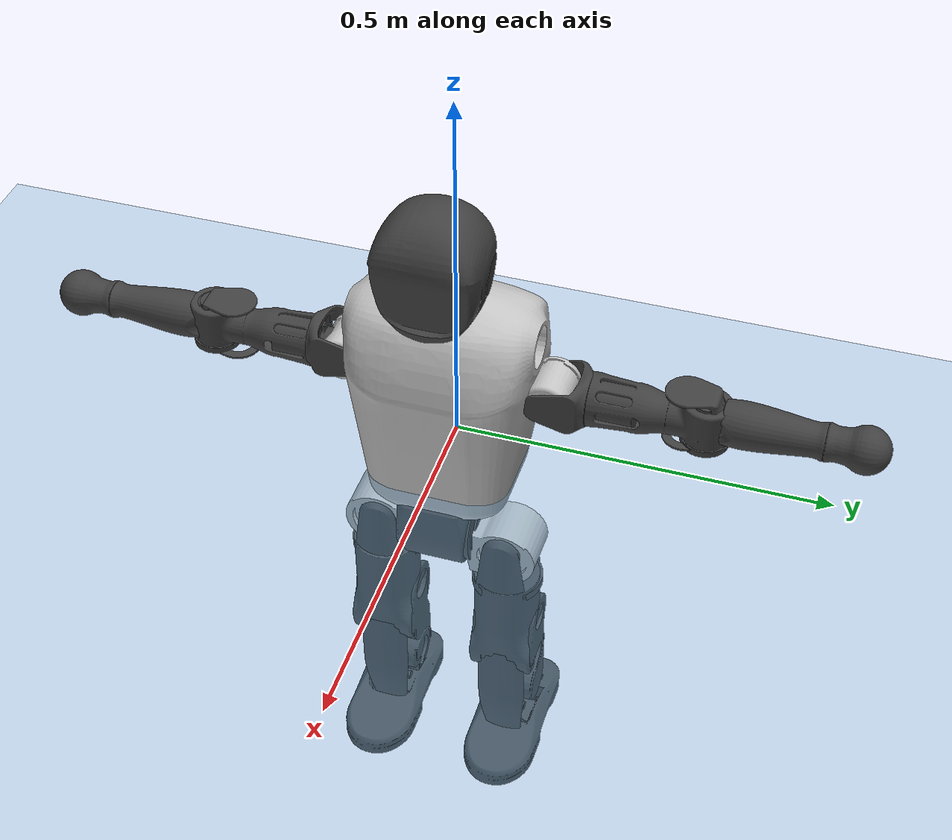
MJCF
<mujoco model="T1">
  <compiler angle="radian" assetdir="assets" balanceinertia="true" inertiafromgeom="false"/>

  <option timestep="0.005" density="1.2" viscosity="2e-05"/>

  <size nkey="1"/>

  <visual>
    <quality shadowsize="8192"/>
    <map shadowclip="0.5"/>
  </visual>

  <default>
    <default class="/">
      <joint armature="0.01" damping="0.01" frictionloss="0.1"/>
      <geom contype="0" conaffinity="0" group="1" solref="-1000 -80"/>
      <site size="0.01 0.005 0.005" group="5"/>
      <general forcelimited="true" biastype="affine" gainprm="25" biasprm="0 -25 -0.6"/>
      <default class="t1">
        <geom rgba="0.25 0.25 0.25 1"/>
        <default class="visual">
          <geom type="mesh" group="2"/>
        </default>
        <default class="collision">
          <geom group="3"/>
        </default>
        <default class="foot">
          <geom size="0.1115 0.05 0.015" type="box" condim="6" group="4" priority="1" solimp="0.015 1 0.015"/>
        </default>
        <default class="reward_collision_sphere">
          <geom group="5" rgba="1 0 0 1"/>
        </default>
      </default>
    </default>
  </default>

  <asset>
    <texture type="skybox" colorspace="auto" name="//unnamed_texture_0" builtin="gradient" rgb1="0.95 0.95 0.95" rgb2="0.95 0.95 0.95" width="100" height="600"/>
    <texture type="2d" colorspace="auto" name="texplane" builtin="checker" rgb1="0.345 0.575 0.748" rgb2="0.345 0.575 0.748" markrgb="1 1 1" width="512" height="512"/>
    <material name="MatPlane" class="/" texture="texplane" texuniform="true" texrepeat="2 2" specular="0.9"/>
    <mesh name="Trunk" class="/" file="Trunk.stl"/>
    <mesh name="H1" class="/" file="H1.stl"/>
    <mesh name="H2" class="/" file="H2.stl"/>
    <mesh name="AL1" class="/" file="AL1.stl"/>
    <mesh name="AL2" class="/" file="AL2.stl"/>
    <mesh name="AL3" class="/" file="AL3.stl"/>
    <mesh name="left_hand_link" class="/" file="left_hand_link.stl"/>
    <mesh name="AR1" class="/" file="AR1.stl"/>
    <mesh name="AR2" class="/" file="AR2.stl"/>
    <mesh name="AR3" class="/" file="AR3.stl"/>
    <mesh name="right_hand_link" class="/" file="right_hand_link.stl"/>
    <mesh name="Waist" class="/" file="Waist.stl"/>
    <mesh name="Hip_Pitch_Left" class="/" file="Hip_Pitch_Left.stl"/>
    <mesh name="Hip_Roll_Left" class="/" file="Hip_Roll_Left.stl"/>
    <mesh name="Hip_Yaw_Left" class="/" file="Hip_Yaw_Left.stl"/>
    <mesh name="Shank_Left" class="/" file="Shank_Left.stl"/>
    <mesh name="Ankle_Cross_Left" class="/" file="Ankle_Cross_Left.stl"/>
    <mesh name="left_foot_link" class="/" file="left_foot_link.stl"/>
    <mesh name="Hip_Pitch_Right" class="/" file="Hip_Pitch_Right.stl"/>
    <mesh name="Hip_Roll_Right" class="/" file="Hip_Roll_Right.stl"/>
    <mesh name="Hip_Yaw_Right" class="/" file="Hip_Yaw_Right.stl"/>
    <mesh name="Shank_Right" class="/" file="Shank_Right.stl"/>
    <mesh name="Ankle_Cross_Right" class="/" file="Ankle_Cross_Right.stl"/>
    <mesh name="right_foot_link" class="/" file="right_foot_link.stl"/>
  </asset>

  <worldbody>
    <geom name="floor" class="/" size="100 100 0.125" type="plane" group="0" material="MatPlane"/>
    <light name="toplight_shadow" class="/" pos="0 0 5" dir="0.0990148 0.0990148 -0.990148" type="directional" ambient="0.04 0.04 0.04" diffuse="0.55 0.55 0.55" specular="0.12 0.12 0.12"/>
    <light name="toplight_fill" class="/" pos="0 0 5" dir="0.0990148 0.0990148 -0.990148" type="directional" castshadow="false" ambient="0.04 0.04 0.04" diffuse="0.3 0.3 0.3" specular="0.08 0.08 0.08"/>
    <body name="trunk" childclass="t1" pos="-0.000108313 0.00519198 -0.00359462" quat="0.999996 0.00152834 0.000402669 -0.00231493">
      <inertial pos="0.0565712 0.000500413 0.0756321" quat="0.999957 0.000368277 -0.00930791 -0.000178678" mass="7.52389" diaginertia="0.109108 0.0279052 0.0087323"/>
      <joint name="//unnamed_joint_0" type="free" armature="0" damping="0" frictionloss="0"/>
      <geom name="//unnamed_geom_1" class="visual" rgba="0.76 0.76 0.76 1" mesh="Trunk"/>
      <geom name="//unnamed_geom_2" class="collision" size="0.0649752 0.0866336 0.12995" pos="0.0633927 0 0.0859601" type="box"/>
      <geom name="//unnamed_geom_3" class="reward_collision_sphere" size="0.0996287" pos="0.0633927 0 0.0716334"/>
      <geom name="//unnamed_geom_4" class="reward_collision_sphere" size="0.012995" pos="0.0633927 0.070221 0"/>
      <geom name="//unnamed_geom_5" class="reward_collision_sphere" size="0.012995" pos="0.0633927 -0.070221 0"/>
      <geom name="//unnamed_geom_6" class="reward_collision_sphere" size="0.012995" pos="0.0633927 0.0883959 0.12894"/>
      <geom name="//unnamed_geom_7" class="reward_collision_sphere" size="0.012995" pos="0.0633927 -0.0883959 0.12894"/>
      <site name="imu" pos="-0.0179789 -0.00621931 0.00696469" size="0.00866336"/>
      <camera name="track" pos="0 -1.65226 0" quat="0.707107 0.707107 0 0" mode="trackcom"/>
      <camera name="ego_camera" pos="0.128899 0 0.30086" quat="-0.5 -0.5 0.5 0.5"/>
      <body name="H1" pos="0.0603277 -0.00572439 0.177342" quat="1 -0.000179298 -0.000212192 5.41587e-05">
        <inertial pos="0.00346613 -0.00154755 0.0374369" quat="0.78781 -0.000649818 -0.00742411 0.615873" mass="0.286353" diaginertia="0.000332929 8.45602e-05 2.85348e-05"/>
        <joint name="AAHead_yaw" pos="0 0 0" axis="0.0036078 0.00814212 0.99996" range="-1.56293 1.6536" armature="0.0106336" damping="0" frictionloss="0.0511222"/>
        <geom name="//unnamed_geom_8" class="visual" mesh="H1"/>
        <body name="H2" pos="-0.00338616 -0.000117631 0.0418312" quat="1 -2.55806e-06 -0.000115192 -3.59598e-05">
          <inertial pos="0.00887401 -0.00148733 0.0717628" quat="0.988379 0.106596 -0.0748485 -0.078367" mass="0.424202" diaginertia="0.00288199 0.000787806 0.000318038"/>
          <joint name="Head_pitch" pos="0 0 0" axis="-0.00235545 -0.999936 -0.0111035" range="-1.2686 0.395448" armature="0.0117651" damping="0" frictionloss="0.0807192"/>
          <geom name="//unnamed_geom_9" class="visual" mesh="H2"/>
          <geom name="//unnamed_geom_10" class="collision" size="0.0693069" pos="0.0105655 0 0.0787968"/>
          <geom name="//unnamed_geom_11" class="reward_collision_sphere" size="0.0779703" pos="0.0211309 0 0.0716334"/>
        </body>
      </body>
      <body name="AL1" pos="0.0613747 0.091203 0.155319" quat="1 -2.80519e-05 0.000356161 8.4556e-05">
        <inertial pos="0.000396012 0.0375602 0.000477131" quat="0.489997 0.49185 -0.535765 0.480565" mass="0.329924" diaginertia="0.0017899 0.0004823 5.08575e-05"/>
        <joint name="Left_Shoulder_Pitch" pos="0 0 0" axis="-0.00608581 0.999966 0.00561168" range="-3.28831 1.21739" armature="0.00811046" damping="0.00381426" frictionloss="0.0771327"/>
        <geom name="//unnamed_geom_12" class="visual" rgba="0.76 0.76 0.76 1" mesh="AL1"/>
        <body name="AL2" pos="0.00299516 0.0408117 0.000766173" quat="1 0.000311623 -0.000163812 -0.00021958">
          <inertial pos="0.00651279 0.0328937 -0.00129296" quat="0.490694 0.508957 -0.488239 0.511669" mass="0.104563" diaginertia="0.000518117 0.000133928 3.19284e-05"/>
          <joint name="Left_Shoulder_Roll" pos="0 0 0" axis="-0.999951 0.0076567 -0.00627462" range="-1.56763 1.6991" armature="0.00847167" damping="0" frictionloss="0.0769762"/>
          <geom name="//unnamed_geom_13" class="visual" mesh="AL2"/>
          <body name="AL3" pos="-0.0045495 0.0523839 -0.00125812" quat="0.999998 0.00152888 -6.45403e-05 -0.00110287">
            <inertial pos="0.00681243 0.0726299 0.000437842" quat="0.704597 0.709532 -0.00525376 0.00887027" mass="0.641113" diaginertia="0.0168668 0.00535153 0.000121226"/>
            <joint name="Left_Elbow_Pitch" pos="0 0 0" axis="0.00376981 -0.999959 0.00822826" range="-2.28679 2.28041" armature="0.00953972" damping="0" frictionloss="0.0778334"/>
            <geom name="//unnamed_geom_14" class="visual" mesh="AL3"/>
            <geom name="//unnamed_geom_15" class="collision" size="0.0259901 0.0649752" pos="0 0.0413065 0" quat="0.707105 0.707108 0 0" type="cylinder"/>
            <geom name="//unnamed_geom_16" class="reward_collision_sphere" size="0.0311881"/>
            <body name="left_hand_link" pos="0.00141611 0.122343 0.00800798" quat="0.999996 -0.00040045 -0.00290788 0.000338356">
              <inertial pos="-0.00111369 0.0933581 -0.00241805" quat="0.710226 0.703943 -0.00314904 -0.00573277" mass="0.224685" diaginertia="0.0109035 0.00327629 4.6627e-05"/>
              <joint name="Left_Elbow_Yaw" pos="0 0 0" axis="0.0065124 -0.0104442 0.999924" range="-2.48741 -0.00483484" armature="0.00767492" damping="0.0191543" frictionloss="0.083936"/>
              <geom name="//unnamed_geom_17" class="visual" mesh="left_hand_link"/>
              <geom name="//unnamed_geom_18" class="collision" size="0.0259901 0.0758044" pos="0 0.107397 0" quat="0.707105 0.707108 0 0" type="cylinder"/>
              <geom name="//unnamed_geom_19" class="reward_collision_sphere" size="0.0433168"/>
              <geom name="//unnamed_geom_20" class="reward_collision_sphere" size="0.0303218" pos="0 0.0908743 0"/>
              <geom name="//unnamed_geom_21" class="reward_collision_sphere" size="0.0303218" pos="0 0.177618 0"/>
            </body>
          </body>
        </body>
      </body>
      <body name="AR1" pos="0.0591528 -0.0806301 0.159164" quat="0.999999 0.000463316 0.000171148 -0.00120357">
        <inertial pos="0.000784773 -0.0321778 -0.00677787" quat="0.495967 0.49724 -0.511315 0.495305" mass="0.350196" diaginertia="0.00182206 0.000549712 5.63809e-05"/>
        <joint name="Right_Shoulder_Pitch" pos="0 0 0" axis="0.0315967 -0.999498 0.00228834" range="-1.30595 3.26341" armature="0.00890585" damping="0.00995434" frictionloss="0.0691113"/>
        <geom name="//unnamed_geom_22" class="visual" rgba="0.76 0.76 0.76 1" mesh="AR1"/>
        <body name="AR2" pos="-0.000894011 -0.0371898 0.00289138" quat="1 0.000544527 -0.000737568 -0.000191544">
          <inertial pos="0.00593691 -0.0305598 0.00219052" quat="0.514046 0.483189 -0.514148 0.487787" mass="0.0955298" diaginertia="0.000473436 0.000116339 3.29211e-05"/>
          <joint name="Right_Shoulder_Roll" pos="0 0 0" axis="-0.999993 -0.00108464 0.00366803" range="-1.72257 1.53654" armature="0.0111659" damping="0.00476447" frictionloss="0.0770562"/>
          <geom name="//unnamed_geom_23" class="visual" mesh="AR2"/>
          <body name="AR3" pos="-0.00216769 -0.0447172 -0.00587755" quat="0.999998 0.000659747 7.31226e-05 0.00212159">
            <inertial pos="-0.00805282 -0.0682775 -0.00544264" quat="0.707425 0.706787 -0.000931134 4.74768e-05" mass="0.688604" diaginertia="0.0190083 0.00507567 0.000121022"/>
            <joint name="Right_Elbow_Pitch" pos="0 0 0" axis="-0.000402798 1 1.87163e-05" range="-2.30963 2.25095" armature="0.00843561" damping="0" frictionloss="0.0512034"/>
            <geom name="//unnamed_geom_24" class="visual" mesh="AR3"/>
            <geom name="//unnamed_geom_25" class="collision" size="0.0259901 0.0649752" pos="0 -0.0413065 0" quat="0.707105 0.707108 0 0" type="cylinder"/>
            <geom name="//unnamed_geom_26" class="reward_collision_sphere" size="0.0311881"/>
            <body name="right_hand_link" pos="0.00215203 -0.117097 0.00280442" quat="1 -0.000300243 0.000193535 -0.000177479">
              <inertial pos="-0.000399957 -0.0891252 -0.000897316" quat="0.705228 0.708954 -0.00337227 -0.00509725" mass="0.204004" diaginertia="0.00977925 0.00284897 3.71718e-05"/>
              <joint name="Right_Elbow_Yaw" pos="0 0 0" axis="0.00897423 -0.0364703 0.999294" range="-0.0213219 2.43662" armature="0.00889496" damping="0" frictionloss="0.07973"/>
              <geom name="//unnamed_geom_27" class="visual" mesh="right_hand_link"/>
              <geom name="//unnamed_geom_28" class="collision" size="0.0259901 0.0758044" pos="0 -0.107397 0" quat="0.707105 0.707108 0 0" type="cylinder"/>
              <geom name="//unnamed_geom_29" class="reward_collision_sphere" size="0.0433168"/>
              <geom name="//unnamed_geom_30" class="reward_collision_sphere" size="0.0303218" pos="0 -0.0908743 0"/>
              <geom name="//unnamed_geom_31" class="reward_collision_sphere" size="0.0303218" pos="0 -0.177618 0"/>
            </body>
          </body>
        </body>
      </body>
      <body name="Waist" pos="0.0741718 -0.000209784 -0.0858257" quat="0.999994 0.00206857 0.00106638 -0.0027504">
        <inertial pos="0.00888915 -0.00362975 0.00850585" quat="0.984146 0.0259609 -0.174269 -0.0203434" mass="1.77616" diaginertia="0.00701418 0.00198405 0.000864089"/>
        <joint name="Waist" pos="0 0 0" axis="-0.0105626 -0.00231459 0.999942" range="-1.57617 1.60326" armature="0.00872195" damping="0.0127681" frictionloss="0.0878225"/>
        <geom name="//unnamed_geom_32" class="visual" mesh="Waist"/>
        <body name="Hip_Pitch_Left" pos="0.0039844 0.0911517 -0.00480076" quat="1 7.31411e-05 -0.000323785 -0.00061368">
          <inertial pos="-0.00546574 -0.00396841 -0.0140664" quat="0.970617 0.240157 0.00260258 -0.0148208" mass="0.66637" diaginertia="0.00249122 0.000520741 0.000227553"/>
          <joint name="Left_Hip_Pitch" pos="0 0 0" axis="-0.0209331 0.999775 -0.00346651" range="-1.80354 1.531" armature="0.00799063" damping="0.00658664" frictionloss="0.0947122"/>
          <geom name="//unnamed_geom_33" class="visual" rgba="0.76 0.76 0.76 1" mesh="Hip_Pitch_Left"/>
          <body name="Hip_Roll_Left" pos="0.00587395 0.000243772 -0.00515641" quat="1 3.22782e-05 -2.00969e-05 -3.13515e-05">
            <inertial pos="0.000672408 0.00751748 -0.0384207" quat="0.706852 -0.00534681 -0.00600369 0.707316" mass="0.26072" diaginertia="0.00255657 0.000662229 9.109e-05"/>
            <joint name="Left_Hip_Roll" pos="0 0 0" axis="-0.999996 0.00266729 0.00128936" stiffness="0.0016838" range="-1.60719 0.176782" armature="0.00936794" damping="0.0448047" frictionloss="0.0697142"/>
            <geom name="//unnamed_geom_34" class="visual" mesh="Hip_Roll_Left"/>
            <geom name="//unnamed_geom_35" class="reward_collision_sphere" size="0.0476485"/>
            <body name="Hip_Yaw_Left" pos="0.00431444 0.000509505 -0.0581174" quat="1 0.000665976 0.000567933 -0.000240162">
              <inertial pos="-0.0056423 0.00048741 -0.0606968" quat="0.694866 -0.0341551 -0.0289809 0.717743" mass="1.45746" diaginertia="0.0355362 0.0107577 0.000534523"/>
              <joint name="Left_Hip_Yaw" pos="0 0 0" axis="0.00654659 -0.000540041 -0.999978" stiffness="0.0262034" range="-0.854053 0.963014" armature="0.00858212" damping="0" frictionloss="0.0866063"/>
              <geom name="//unnamed_geom_36" class="visual" mesh="Hip_Yaw_Left"/>
              <geom name="//unnamed_geom_37" class="collision" size="0.0433168 0.0693069" type="cylinder"/>
              <body name="Shank_Left" pos="-0.00905829 0.0014463 -0.0853227" quat="1 -4.85755e-05 0.000366005 -5.42777e-05">
                <inertial pos="-0.00225521 0.00228005 -0.0880285" quat="0.997158 -0.0021491 -0.0316106 0.0683537" mass="1.13638" diaginertia="0.0450749 0.0148459 0.00037749"/>
                <joint name="Left_Knee_Pitch" pos="0 0 0" axis="-0.00124521 0.999997 0.00207184" range="0.00119066 2.38814" armature="0.00721612" damping="0.0200469" frictionloss="0.0783873"/>
                <geom name="//unnamed_geom_38" class="visual" mesh="Shank_Left"/>
                <geom name="//unnamed_geom_39" class="collision" size="0.0433168 0.0649752" pos="0 0 -0.0859601" type="cylinder"/>
                <geom name="//unnamed_geom_40" class="reward_collision_sphere" size="0.0563119"/>
                <body name="Ankle_Cross_Left" pos="-0.00599232 0.000219207 -0.208715" quat="1 0.00032431 0.000148306 -0.000620156">
                  <inertial pos="0.00440015 0.00255292 -0.00735392" quat="0.449905 0.547093 0.549261 0.443382" mass="0.0489255" diaginertia="3.9126e-05 9.94183e-06 2.14588e-06"/>
                  <joint name="Left_Ankle_Pitch" pos="0 0 0" axis="-0.000910036 0.999998 0.00201664" stiffness="0.019576" range="-0.859202 0.354484" armature="0.0053111" damping="0" frictionloss="0.0946736"/>
                  <geom name="//unnamed_geom_41" class="visual" mesh="Ankle_Cross_Left"/>
                  <body name="left_foot_link" pos="-0.00104564 0.00298559 -0.0113349" quat="0.999991 -0.0024167 0.0023131 -0.00245696">
                    <inertial pos="0.00360173 0.00160728 -0.00886358" quat="0.0108947 0.638042 0.0168641 0.769739" mass="0.412086" diaginertia="0.00326904 0.000890865 0.000379547"/>
                    <joint name="Left_Ankle_Roll" pos="0 0 0" axis="-0.999228 -0.00990284 -0.0380266" range="-0.430166 0.38873" armature="0.00849732" damping="0.0262203" frictionloss="0.0794158"/>
                    <geom name="//unnamed_geom_42" class="visual" mesh="left_foot_link"/>
                    <geom name="left_foot" class="foot" size="0.0928769 0.055114 0.0112301" pos="0.0105655 0 -0.010745"/>
                    <geom name="//unnamed_geom_44" class="reward_collision_sphere" size="0.0450495" pos="0.0105655 0 -0.010745"/>
                    <geom name="//unnamed_geom_45" class="reward_collision_sphere" size="0.0259901" pos="0.100372 -0.019001 -0.010745"/>
                    <geom name="//unnamed_geom_46" class="reward_collision_sphere" size="0.0259901" pos="-0.0739582 -0.019001 -0.010745"/>
                    <site name="left_foot" class="foot" pos="0.0105655 0 -0.010745" size="0.00866336"/>
                  </body>
                </body>
              </body>
            </body>
          </body>
        </body>
        <body name="Hip_Pitch_Right" pos="-0.00291199 -0.0857632 0.00753799" quat="1 0.000339283 0.000633742 -0.000178257">
          <inertial pos="0.00742017 0.0118251 -0.0133411" quat="0.974117 -0.225719 0.00991025 -0.00706058" mass="0.666722" diaginertia="0.00228165 0.000532799 0.00024096"/>
          <joint name="Right_Hip_Pitch" pos="0 0 0" axis="-0.000542223 -0.999992 0.00399512" range="-1.60055 1.8489" armature="0.00857251" damping="0.0390384" frictionloss="0.0866909"/>
          <geom name="//unnamed_geom_47" class="visual" rgba="0.76 0.76 0.76 1" mesh="Hip_Pitch_Right"/>
          <body name="Hip_Roll_Right" pos="0.00207559 0.00312017 -0.00689618" quat="1 -0.000908755 0.000287206 -0.00012115">
            <inertial pos="0.00440695 0.000314973 -0.041511" quat="0.721794 -0.00884741 0.00786268 0.692006" mass="0.243072" diaginertia="0.00203953 0.000559962 9.24164e-05"/>
            <joint name="Right_Hip_Roll" pos="0 0 0" axis="-1 0.000462045 -0.000243983" range="-0.243704 1.59594" armature="0.00812263" damping="0.01352" frictionloss="0.0736648"/>
            <geom name="//unnamed_geom_48" class="visual" mesh="Hip_Roll_Right"/>
            <geom name="//unnamed_geom_49" class="reward_collision_sphere" size="0.0476485"/>
            <body name="Hip_Yaw_Right" pos="0.0072115 0.00140488 -0.060014" quat="0.999999 -0.000499801 -0.000705674 0.000686501">
              <inertial pos="-0.00879097 -0.000926577 -0.0660705" quat="0.711189 -0.0276177 -0.030679 0.701788" mass="1.33896" diaginertia="0.029943 0.00930695 0.000429086"/>
              <joint name="Right_Hip_Yaw" pos="0 0 0" axis="-0.000638004 0.00424689 -0.999991" range="-1.02853 0.983662" armature="0.00955796" damping="0" frictionloss="0.0839438"/>
              <geom name="//unnamed_geom_50" class="visual" mesh="Hip_Yaw_Right"/>
              <geom name="//unnamed_geom_51" class="collision" size="0.0433168 0.0693069" type="cylinder"/>
              <body name="Shank_Right" pos="-0.00990924 0.00157848 -0.0931089" quat="1 -8.4846e-05 -0.000235368 -9.062e-05">
                <inertial pos="-0.00650992 0.00474351 -0.0877402" quat="0.999537 0.0105053 -0.0235754 -0.016112" mass="1.06454" diaginertia="0.0451094 0.0131735 0.000388733"/>
                <joint name="Right_Knee_Pitch" pos="0 0 0" axis="0.00700229 -0.999937 -0.00874971" stiffness="0.00314603" range="-2.21856 0.0135004" armature="0.00810226" damping="0.00652503" frictionloss="0.0769992"/>
                <geom name="//unnamed_geom_52" class="visual" mesh="Shank_Right"/>
                <geom name="//unnamed_geom_53" class="collision" size="0.0433168 0.0649752" pos="0 0 -0.0859601" type="cylinder"/>
                <geom name="//unnamed_geom_54" class="reward_collision_sphere" size="0.0563119"/>
                <body name="Ankle_Cross_Right" pos="0.0033577 0.00124797 -0.201382" quat="1 -0.000163971 -3.81132e-05 -0.000189382">
                  <inertial pos="-0.00642451 -0.000933447 -0.00553289" quat="0.443639 0.550953 0.55072 0.443106" mass="0.0497928" diaginertia="3.61316e-05 1.03968e-05 2.02497e-06"/>
                  <joint name="Right_Ankle_Pitch" pos="0 0 0" axis="-0.0233617 -0.999613 0.0150901" stiffness="0.0190549" range="-0.395755 0.944794" armature="0.00883522" damping="0.00161913" frictionloss="0.0860637"/>
                  <geom name="//unnamed_geom_55" class="visual" mesh="Ankle_Cross_Right"/>
                  <body name="right_foot_link" pos="-0.00330877 -0.00513655 -0.0191683" quat="1 1.87413e-05 4.98371e-06 -0.00017228">
                    <inertial pos="-9.32788e-05 -0.00498715 0.00123889" quat="0.0141135 0.620931 0.0211691 0.783452" mass="0.495286" diaginertia="0.0040326 0.00101135 0.000496045"/>
                    <joint name="Right_Ankle_Roll" pos="0 0 0" axis="-1 -0.000720963 -3.26736e-05" stiffness="0.00459469" range="-0.351979 0.308443" armature="0.0123115" damping="0.0434064" frictionloss="0.0725456"/>
                    <geom name="//unnamed_geom_56" class="visual" mesh="right_foot_link"/>
                    <geom name="right_foot" class="foot" size="0.0841723 0.0515379 0.0105492" pos="0.0105655 0 -0.010745"/>
                    <geom name="//unnamed_geom_58" class="reward_collision_sphere" size="0.0346535"/>
                    <geom name="//unnamed_geom_59" class="reward_collision_sphere" size="0.0259901" pos="0.0105655 0 -0.010745"/>
                    <geom name="//unnamed_geom_60" class="reward_collision_sphere" size="0.0259901" pos="0.100372 0.019001 -0.010745"/>
                    <geom name="//unnamed_geom_61" class="reward_collision_sphere" size="0.0259901" pos="-0.0739582 0.019001 -0.010745"/>
                    <site name="right_foot" class="foot" pos="0.0105655 0 -0.010745" size="0.00866336"/>
                  </body>
                </body>
              </body>
            </body>
          </body>
        </body>
      </body>
    </body>
  </worldbody>

  <contact>
    <pair class="/" geom1="floor" geom2="left_foot" name="//unnamed_contact_0"/>
    <pair class="/" geom1="floor" geom2="right_foot" name="//unnamed_contact_1"/>
  </contact>

  <actuator>
    <general name="AAHead_yaw" class="/" joint="AAHead_yaw" forcerange="-6.0858 6.0858" gainprm="21.9902" biasprm="0 -21.9902 -0.502044"/>
    <general name="Head_pitch" class="/" joint="Head_pitch" forcerange="-6.38142 6.38142" gainprm="21.9902" biasprm="0 -21.9902 -0.502044"/>
    <general name="Left_Shoulder_Pitch" class="/" joint="Left_Shoulder_Pitch" forcerange="-20.3371 20.3371" gainprm="21.9902" biasprm="0 -21.9902 -0.502044"/>
    <general name="Left_Shoulder_Roll" class="/" joint="Left_Shoulder_Roll" forcerange="-18.8022 18.8022" gainprm="21.9902" biasprm="0 -21.9902 -0.502044"/>
    <general name="Left_Elbow_Pitch" class="/" joint="Left_Elbow_Pitch" forcerange="-14.0367 14.0367" gainprm="21.9902" biasprm="0 -21.9902 -0.502044"/>
    <general name="Left_Elbow_Yaw" class="/" joint="Left_Elbow_Yaw" forcerange="-15.4476 15.4476" gainprm="21.9902" biasprm="0 -21.9902 -0.502044"/>
    <general name="Right_Shoulder_Pitch" class="/" joint="Right_Shoulder_Pitch" forcerange="-14.642 14.642" gainprm="21.9902" biasprm="0 -21.9902 -0.502044"/>
    <general name="Right_Shoulder_Roll" class="/" joint="Right_Shoulder_Roll" forcerange="-13.6741 13.6741" gainprm="21.9902" biasprm="0 -21.9902 -0.502044"/>
    <general name="Right_Elbow_Pitch" class="/" joint="Right_Elbow_Pitch" forcerange="-16.8582 16.8582" gainprm="21.9902" biasprm="0 -21.9902 -0.502044"/>
    <general name="Right_Elbow_Yaw" class="/" joint="Right_Elbow_Yaw" forcerange="-14.6141 14.6141" gainprm="21.9902" biasprm="0 -21.9902 -0.502044"/>
    <general name="Waist" class="/" joint="Waist" forcerange="-30.5832 30.5832" gainprm="21.9902" biasprm="0 -21.9902 -0.502044"/>
    <general name="Left_Hip_Pitch" class="/" joint="Left_Hip_Pitch" forcerange="-42.3869 42.3869" gainprm="21.9902" biasprm="0 -21.9902 -0.502044"/>
    <general name="Left_Hip_Roll" class="/" joint="Left_Hip_Roll" forcerange="-26.2503 26.2503" gainprm="21.9902" biasprm="0 -21.9902 -0.502044"/>
    <general name="Left_Hip_Yaw" class="/" joint="Left_Hip_Yaw" forcerange="-27.6912 27.6912" gainprm="21.9902" biasprm="0 -21.9902 -0.502044"/>
    <general name="Left_Knee_Pitch" class="/" joint="Left_Knee_Pitch" forcerange="-49.968 49.968" gainprm="21.9902" biasprm="0 -21.9902 -0.502044"/>
    <general name="Left_Ankle_Pitch" class="/" joint="Left_Ankle_Pitch" forcerange="-17.5857 17.5857" gainprm="21.9902" biasprm="0 -21.9902 -0.502044"/>
    <general name="Left_Ankle_Roll" class="/" joint="Left_Ankle_Roll" forcerange="-13.364 13.364" gainprm="21.9902" biasprm="0 -21.9902 -0.502044"/>
    <general name="Right_Hip_Pitch" class="/" joint="Right_Hip_Pitch" forcerange="-30.7639 30.7639" gainprm="21.9902" biasprm="0 -21.9902 -0.502044"/>
    <general name="Right_Hip_Roll" class="/" joint="Right_Hip_Roll" forcerange="-18.4568 18.4568" gainprm="21.9902" biasprm="0 -21.9902 -0.502044"/>
    <general name="Right_Hip_Yaw" class="/" joint="Right_Hip_Yaw" forcerange="-25.8315 25.8315" gainprm="21.9902" biasprm="0 -21.9902 -0.502044"/>
    <general name="Right_Knee_Pitch" class="/" joint="Right_Knee_Pitch" forcerange="-49.3773 49.3773" gainprm="21.9902" biasprm="0 -21.9902 -0.502044"/>
    <general name="Right_Ankle_Pitch" class="/" joint="Right_Ankle_Pitch" forcerange="-22.1954 22.1954" gainprm="21.9902" biasprm="0 -21.9902 -0.502044"/>
    <general name="Right_Ankle_Roll" class="/" joint="Right_Ankle_Roll" forcerange="-10.8817 10.8817" gainprm="21.9902" biasprm="0 -21.9902 -0.502044"/>
  </actuator>

  <sensor>
    <gyro site="imu" name="imu_angular_velocity"/>
    <velocimeter site="imu" name="imu_linear_velocity"/>
    <framelinvel objtype="site" objname="left_foot" name="left_foot_global_linear_velocity"/>
    <framelinvel objtype="site" objname="right_foot" name="right_foot_global_linear_velocity"/>
  </sensor>

  <keyframe>
    <key name="home" qpos="0 0 0.6385 1 0 0 0 0 0 0 1.4 0 -0.4 0 -1.4 0 0.4 0 -0.4 0 0 0.8 -0.4 0 0.4 0 0 -0.8 0.4 0"/>
  </keyframe>
</mujoco>
